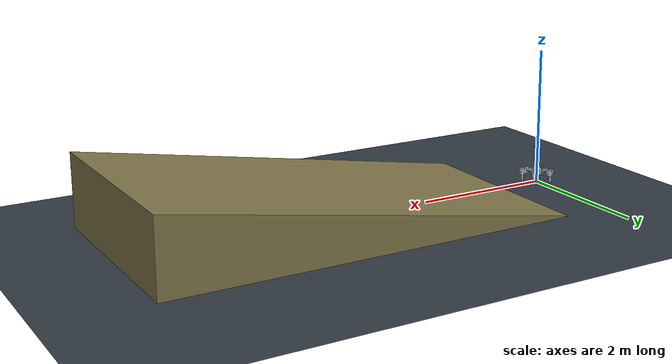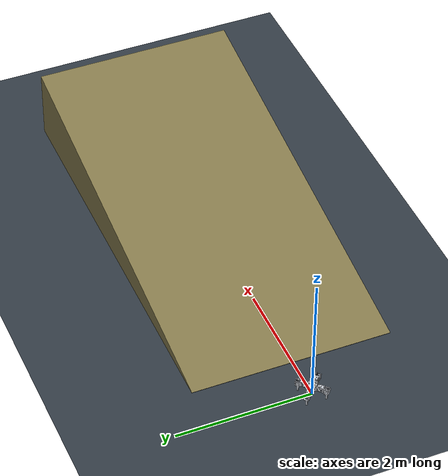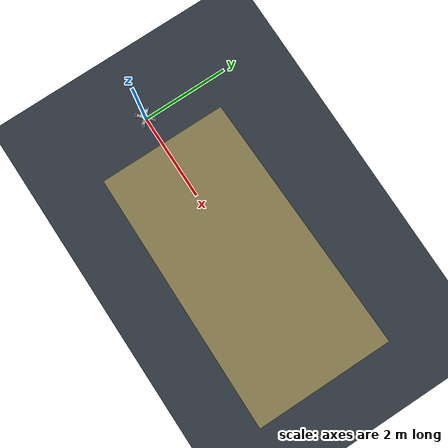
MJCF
<?xml version='1.0' encoding='utf-8'?>
<mujoco model="A17 - flat to 10 degree ramp - 1.26 Nm">
  <compiler angle="radian" meshdir="robot_meshes_a17" inertiafromgeom="false" autolimits="true" />
  <option timestep=".002" integrator="implicitfast" cone="elliptic" iterations="50" />
  <visual>
    <global offwidth="1280" offheight="900" />
    <headlight ambient=".4 .4 .4" diffuse=".7 .7 .7" />
  </visual>
  <statistic center="0 0 .15" extent=".9" />
  <asset>
    <texture name="grid" type="2d" builtin="checker" width="512" height="512" rgb1=".15 .18 .22" rgb2=".23 .27 .3" />
    <material name="floor_mat" texture="grid" texrepeat="15 15" texuniform="true" />
    <mesh name="platform_White" file="platform_White.obj" inertia="shell" maxhullvert="32" />
    <mesh name="platform_Green" file="platform_Green.obj" inertia="shell" maxhullvert="32" />
    <mesh name="platform_Yellow" file="platform_Yellow.obj" inertia="shell" maxhullvert="32" />
    <mesh name="platform_Black" file="platform_Black.obj" inertia="shell" maxhullvert="32" />
    <mesh name="platform_Gray" file="platform_Gray.obj" inertia="shell" maxhullvert="32" />
    <mesh name="FL_yaw_White" file="FL_yaw_White.obj" inertia="shell" maxhullvert="32" />
    <mesh name="FL_yaw_Yellow" file="FL_yaw_Yellow.obj" inertia="shell" maxhullvert="32" />
    <mesh name="FL_yaw_Black" file="FL_yaw_Black.obj" inertia="shell" maxhullvert="32" />
    <mesh name="FL_yaw_Gray" file="FL_yaw_Gray.obj" inertia="shell" maxhullvert="32" />
    <mesh name="FL_pitch_White" file="FL_pitch_White.obj" inertia="shell" maxhullvert="32" />
    <mesh name="FL_pitch_Yellow" file="FL_pitch_Yellow.obj" inertia="shell" maxhullvert="32" />
    <mesh name="FL_pitch_Black" file="FL_pitch_Black.obj" inertia="shell" maxhullvert="32" />
    <mesh name="RL_yaw_White" file="RL_yaw_White.obj" inertia="shell" maxhullvert="32" />
    <mesh name="RL_yaw_Yellow" file="RL_yaw_Yellow.obj" inertia="shell" maxhullvert="32" />
    <mesh name="RL_yaw_Black" file="RL_yaw_Black.obj" inertia="shell" maxhullvert="32" />
    <mesh name="RL_yaw_Gray" file="RL_yaw_Gray.obj" inertia="shell" maxhullvert="32" />
    <mesh name="RL_pitch_White" file="RL_pitch_White.obj" inertia="shell" maxhullvert="32" />
    <mesh name="RL_pitch_Yellow" file="RL_pitch_Yellow.obj" inertia="shell" maxhullvert="32" />
    <mesh name="RL_pitch_Black" file="RL_pitch_Black.obj" inertia="shell" maxhullvert="32" />
    <mesh name="FR_yaw_White" file="FR_yaw_White.obj" inertia="shell" maxhullvert="32" />
    <mesh name="FR_yaw_Yellow" file="FR_yaw_Yellow.obj" inertia="shell" maxhullvert="32" />
    <mesh name="FR_yaw_Black" file="FR_yaw_Black.obj" inertia="shell" maxhullvert="32" />
    <mesh name="FR_yaw_Gray" file="FR_yaw_Gray.obj" inertia="shell" maxhullvert="32" />
    <mesh name="FR_pitch_White" file="FR_pitch_White.obj" inertia="shell" maxhullvert="32" />
    <mesh name="FR_pitch_Yellow" file="FR_pitch_Yellow.obj" inertia="shell" maxhullvert="32" />
    <mesh name="FR_pitch_Black" file="FR_pitch_Black.obj" inertia="shell" maxhullvert="32" />
    <mesh name="RR_yaw_White" file="RR_yaw_White.obj" inertia="shell" maxhullvert="32" />
    <mesh name="RR_yaw_Yellow" file="RR_yaw_Yellow.obj" inertia="shell" maxhullvert="32" />
    <mesh name="RR_yaw_Black" file="RR_yaw_Black.obj" inertia="shell" maxhullvert="32" />
    <mesh name="RR_yaw_Gray" file="RR_yaw_Gray.obj" inertia="shell" maxhullvert="32" />
    <mesh name="RR_pitch_White" file="RR_pitch_White.obj" inertia="shell" maxhullvert="32" />
    <mesh name="RR_pitch_Yellow" file="RR_pitch_Yellow.obj" inertia="shell" maxhullvert="32" />
    <mesh name="RR_pitch_Black" file="RR_pitch_Black.obj" inertia="shell" maxhullvert="32" />
    <mesh name="ramp_wedge" vertex="0.65 -1.5 -0.1 0.65 -1.5 0 0.65 1.5 -0.1 0.65 1.5 0 6.65 -1.5 -0.1 6.65 -1.5 1.0579618842507899 6.65 1.5 -0.1 6.65 1.5 1.0579618842507899" />
  </asset>
  <worldbody>
    <light pos="0 -1 2" dir="0 0 -1" />
    <geom name="floor" type="plane" size="20 20 .1" material="floor_mat" contype="1" conaffinity="2" friction=".8 .002 .0001" />
    <body name="platform" pos="0 0 .114">
      <freejoint name="floating_base" />
      <site name="imu" pos="0 0 .09" size=".003" group="4" />
      <body name="FL_yaw" pos="0.0764411255 0.0764411255 0.0545">
        <joint name="FL_yaw" type="hinge" axis="0 0 1" range="-1.57079633 1.57079633" damping=".012" armature=".000005" />
        <body name="FL_pitch" pos="0.0774281925 0.0639931637 -0.0095">
          <joint name="FL_pitch" type="hinge" axis="0.707106781 -0.707106781 0" range="0 1.57079633" damping=".012" armature=".000005" />
          <inertial mass="0.131206572" pos="-0.00595589217 0.00595588932 -0.051345835" fullinertia="0.000362158563 0.000362158555 0.000197800444 2.48118124e-05 -1.56438993e-05 1.5643884e-05" />
          <geom name="visual_FL_pitch_White" type="mesh" mesh="FL_pitch_White" rgba="0.78 0.8 0.83 1" contype="0" conaffinity="0" group="1" mass="0" />
          <geom name="visual_FL_pitch_Yellow" type="mesh" mesh="FL_pitch_Yellow" rgba="0.88 0.57 0.1 1" contype="0" conaffinity="0" group="1" mass="0" />
          <geom name="visual_FL_pitch_Black" type="mesh" mesh="FL_pitch_Black" rgba="0.065 0.075 0.09 1" contype="0" conaffinity="0" group="1" mass="0" />
          <geom name="FL_shank_contact" type="capsule" contype="2" conaffinity="3" group="3" rgba=".1 .8 .6 .35" mass="0" friction=".8 .002 .0001" solref=".006 1" fromto="0 0 -0.047 -0.00671751442 0.00671751442 -0.138" size=".012" />
          <geom name="FL_foot_contact" type="cylinder" contype="2" conaffinity="3" group="3" rgba=".1 .8 .6 .35" mass="0" friction=".8 .002 .0001" solref=".006 1" pos="-0.00671751442 0.00671751442 -0.1535" size=".015 .0045" />
          <site name="FL_foot" pos="-0.00671751442 0.00671751442 -0.158" size=".003" group="4" />
        </body>
        <inertial mass="0.235695785" pos="0.0495866798 0.0484265804 -0.00880650436" fullinertia="0.000400733281 0.000407514882 0.000585452045 -0.000137889561 1.72683121e-05 1.71237115e-05" />
        <geom name="visual_FL_yaw_White" type="mesh" mesh="FL_yaw_White" rgba="0.78 0.8 0.83 1" contype="0" conaffinity="0" group="1" mass="0" />
        <geom name="visual_FL_yaw_Yellow" type="mesh" mesh="FL_yaw_Yellow" rgba="0.88 0.57 0.1 1" contype="0" conaffinity="0" group="1" mass="0" />
        <geom name="visual_FL_yaw_Black" type="mesh" mesh="FL_yaw_Black" rgba="0.065 0.075 0.09 1" contype="0" conaffinity="0" group="1" mass="0" />
        <geom name="visual_FL_yaw_Gray" type="mesh" mesh="FL_yaw_Gray" rgba="0.42 0.47 0.53 1" contype="0" conaffinity="0" group="1" mass="0" />
        <geom name="FL_upper_contact" type="capsule" contype="2" conaffinity="3" group="3" rgba=".1 .8 .6 .35" mass="0" friction=".8 .002 .0001" solref=".006 1" fromto="0 0 0 0.0774281925 0.0639931637 -0.0095" size=".025" />
      </body>
      <body name="RL_yaw" pos="-0.0764411255 0.0764411255 0.0545">
        <joint name="RL_yaw" type="hinge" axis="0 0 1" range="-1.57079633 1.57079633" damping=".012" armature=".000005" />
        <body name="RL_pitch" pos="-0.0639931637 0.0774281925 -0.0095">
          <joint name="RL_pitch" type="hinge" axis="0.707106781 0.707106781 0" range="0 1.57079633" damping=".012" armature=".000005" />
          <inertial mass="0.131206579" pos="-0.00595591429 -0.00595591767 -0.0513458357" fullinertia="0.000362158566 0.000362158573 0.00019780046 -2.48118174e-05 -1.5644018e-05 -1.56440361e-05" />
          <geom name="visual_RL_pitch_White" type="mesh" mesh="RL_pitch_White" rgba="0.78 0.8 0.83 1" contype="0" conaffinity="0" group="1" mass="0" />
          <geom name="visual_RL_pitch_Yellow" type="mesh" mesh="RL_pitch_Yellow" rgba="0.88 0.57 0.1 1" contype="0" conaffinity="0" group="1" mass="0" />
          <geom name="visual_RL_pitch_Black" type="mesh" mesh="RL_pitch_Black" rgba="0.065 0.075 0.09 1" contype="0" conaffinity="0" group="1" mass="0" />
          <geom name="RL_shank_contact" type="capsule" contype="2" conaffinity="3" group="3" rgba=".1 .8 .6 .35" mass="0" friction=".8 .002 .0001" solref=".006 1" fromto="0 0 -0.047 -0.00671751442 -0.00671751442 -0.138" size=".012" />
          <geom name="RL_foot_contact" type="cylinder" contype="2" conaffinity="3" group="3" rgba=".1 .8 .6 .35" mass="0" friction=".8 .002 .0001" solref=".006 1" pos="-0.00671751442 -0.00671751442 -0.1535" size=".015 .0045" />
          <site name="RL_foot" pos="-0.00671751442 -0.00671751442 -0.158" size=".003" group="4" />
        </body>
        <inertial mass="0.235695785" pos="-0.0484265804 0.0495866798 -0.00880650436" fullinertia="0.000407514882 0.000400733281 0.000585452045 0.000137889561 -1.71237115e-05 1.72683121e-05" />
        <geom name="visual_RL_yaw_White" type="mesh" mesh="RL_yaw_White" rgba="0.78 0.8 0.83 1" contype="0" conaffinity="0" group="1" mass="0" />
        <geom name="visual_RL_yaw_Yellow" type="mesh" mesh="RL_yaw_Yellow" rgba="0.88 0.57 0.1 1" contype="0" conaffinity="0" group="1" mass="0" />
        <geom name="visual_RL_yaw_Black" type="mesh" mesh="RL_yaw_Black" rgba="0.065 0.075 0.09 1" contype="0" conaffinity="0" group="1" mass="0" />
        <geom name="visual_RL_yaw_Gray" type="mesh" mesh="RL_yaw_Gray" rgba="0.42 0.47 0.53 1" contype="0" conaffinity="0" group="1" mass="0" />
        <geom name="RL_upper_contact" type="capsule" contype="2" conaffinity="3" group="3" rgba=".1 .8 .6 .35" mass="0" friction=".8 .002 .0001" solref=".006 1" fromto="0 0 0 -0.0639931637 0.0774281925 -0.0095" size=".025" />
      </body>
      <body name="FR_yaw" pos="0.0764411255 -0.0764411255 0.0545">
        <joint name="FR_yaw" type="hinge" axis="0 0 1" range="-1.57079633 1.57079633" damping=".012" armature=".000005" />
        <body name="FR_pitch" pos="0.0639931637 -0.0774281925 -0.0095">
          <joint name="FR_pitch" type="hinge" axis="-0.707106781 -0.707106781 0" range="0 1.57079633" damping=".012" armature=".000005" />
          <inertial mass="0.131206576" pos="0.00595587448 0.00595589257 -0.0513458412" fullinertia="0.00036215862 0.000362158625 0.000197800445 -2.4811811e-05 1.56438047e-05 1.56439019e-05" />
          <geom name="visual_FR_pitch_White" type="mesh" mesh="FR_pitch_White" rgba="0.78 0.8 0.83 1" contype="0" conaffinity="0" group="1" mass="0" />
          <geom name="visual_FR_pitch_Yellow" type="mesh" mesh="FR_pitch_Yellow" rgba="0.88 0.57 0.1 1" contype="0" conaffinity="0" group="1" mass="0" />
          <geom name="visual_FR_pitch_Black" type="mesh" mesh="FR_pitch_Black" rgba="0.065 0.075 0.09 1" contype="0" conaffinity="0" group="1" mass="0" />
          <geom name="FR_shank_contact" type="capsule" contype="2" conaffinity="3" group="3" rgba=".1 .8 .6 .35" mass="0" friction=".8 .002 .0001" solref=".006 1" fromto="0 0 -0.047 0.00671751442 0.00671751442 -0.138" size=".012" />
          <geom name="FR_foot_contact" type="cylinder" contype="2" conaffinity="3" group="3" rgba=".1 .8 .6 .35" mass="0" friction=".8 .002 .0001" solref=".006 1" pos="0.00671751442 0.00671751442 -0.1535" size=".015 .0045" />
          <site name="FR_foot" pos="0.00671751442 0.00671751442 -0.158" size=".003" group="4" />
        </body>
        <inertial mass="0.235695785" pos="0.0484265804 -0.0495866798 -0.00880650436" fullinertia="0.000407514882 0.000400733281 0.000585452045 0.000137889561 1.71237115e-05 -1.72683121e-05" />
        <geom name="visual_FR_yaw_White" type="mesh" mesh="FR_yaw_White" rgba="0.78 0.8 0.83 1" contype="0" conaffinity="0" group="1" mass="0" />
        <geom name="visual_FR_yaw_Yellow" type="mesh" mesh="FR_yaw_Yellow" rgba="0.88 0.57 0.1 1" contype="0" conaffinity="0" group="1" mass="0" />
        <geom name="visual_FR_yaw_Black" type="mesh" mesh="FR_yaw_Black" rgba="0.065 0.075 0.09 1" contype="0" conaffinity="0" group="1" mass="0" />
        <geom name="visual_FR_yaw_Gray" type="mesh" mesh="FR_yaw_Gray" rgba="0.42 0.47 0.53 1" contype="0" conaffinity="0" group="1" mass="0" />
        <geom name="FR_upper_contact" type="capsule" contype="2" conaffinity="3" group="3" rgba=".1 .8 .6 .35" mass="0" friction=".8 .002 .0001" solref=".006 1" fromto="0 0 0 0.0639931637 -0.0774281925 -0.0095" size=".025" />
      </body>
      <body name="RR_yaw" pos="-0.0764411255 -0.0764411255 0.0545">
        <joint name="RR_yaw" type="hinge" axis="0 0 1" range="-1.57079633 1.57079633" damping=".012" armature=".000005" />
        <body name="RR_pitch" pos="-0.0774281925 -0.0639931637 -0.0095">
          <joint name="RR_pitch" type="hinge" axis="-0.707106781 0.707106781 0" range="0 1.57079633" damping=".012" armature=".000005" />
          <inertial mass="0.131206577" pos="0.00595593255 -0.00595591444 -0.0513458414" fullinertia="0.000362158635 0.000362158631 0.000197800461 2.4811819e-05 1.56441167e-05 -1.56440194e-05" />
          <geom name="visual_RR_pitch_White" type="mesh" mesh="RR_pitch_White" rgba="0.78 0.8 0.83 1" contype="0" conaffinity="0" group="1" mass="0" />
          <geom name="visual_RR_pitch_Yellow" type="mesh" mesh="RR_pitch_Yellow" rgba="0.88 0.57 0.1 1" contype="0" conaffinity="0" group="1" mass="0" />
          <geom name="visual_RR_pitch_Black" type="mesh" mesh="RR_pitch_Black" rgba="0.065 0.075 0.09 1" contype="0" conaffinity="0" group="1" mass="0" />
          <geom name="RR_shank_contact" type="capsule" contype="2" conaffinity="3" group="3" rgba=".1 .8 .6 .35" mass="0" friction=".8 .002 .0001" solref=".006 1" fromto="0 0 -0.047 0.00671751442 -0.00671751442 -0.138" size=".012" />
          <geom name="RR_foot_contact" type="cylinder" contype="2" conaffinity="3" group="3" rgba=".1 .8 .6 .35" mass="0" friction=".8 .002 .0001" solref=".006 1" pos="0.00671751442 -0.00671751442 -0.1535" size=".015 .0045" />
          <site name="RR_foot" pos="0.00671751442 -0.00671751442 -0.158" size=".003" group="4" />
        </body>
        <inertial mass="0.235695785" pos="-0.0495866798 -0.0484265804 -0.00880650436" fullinertia="0.000400733281 0.000407514882 0.000585452045 -0.000137889561 -1.72683121e-05 -1.71237115e-05" />
        <geom name="visual_RR_yaw_White" type="mesh" mesh="RR_yaw_White" rgba="0.78 0.8 0.83 1" contype="0" conaffinity="0" group="1" mass="0" />
        <geom name="visual_RR_yaw_Yellow" type="mesh" mesh="RR_yaw_Yellow" rgba="0.88 0.57 0.1 1" contype="0" conaffinity="0" group="1" mass="0" />
        <geom name="visual_RR_yaw_Black" type="mesh" mesh="RR_yaw_Black" rgba="0.065 0.075 0.09 1" contype="0" conaffinity="0" group="1" mass="0" />
        <geom name="visual_RR_yaw_Gray" type="mesh" mesh="RR_yaw_Gray" rgba="0.42 0.47 0.53 1" contype="0" conaffinity="0" group="1" mass="0" />
        <geom name="RR_upper_contact" type="capsule" contype="2" conaffinity="3" group="3" rgba=".1 .8 .6 .35" mass="0" friction=".8 .002 .0001" solref=".006 1" fromto="0 0 0 -0.0774281925 -0.0639931637 -0.0095" size=".025" />
      </body>
      <inertial mass="1.09882888" pos="-2.04439108e-05 -0.00138846579 0.043609218" fullinertia="0.00459269714 0.00463127091 0.00796359074 5.25406911e-07 7.52587091e-08 3.26556667e-05" />
      <geom name="visual_platform_White" type="mesh" mesh="platform_White" rgba="0.78 0.8 0.83 1" contype="0" conaffinity="0" group="1" mass="0" />
      <geom name="visual_platform_Green" type="mesh" mesh="platform_Green" rgba="0.12 0.55 0.32 1" contype="0" conaffinity="0" group="1" mass="0" />
      <geom name="visual_platform_Yellow" type="mesh" mesh="platform_Yellow" rgba="0.88 0.57 0.1 1" contype="0" conaffinity="0" group="1" mass="0" />
      <geom name="visual_platform_Black" type="mesh" mesh="platform_Black" rgba="0.065 0.075 0.09 1" contype="0" conaffinity="0" group="1" mass="0" />
      <geom name="visual_platform_Gray" type="mesh" mesh="platform_Gray" rgba="0.42 0.47 0.53 1" contype="0" conaffinity="0" group="1" mass="0" />
      <geom name="centre_contact" type="box" contype="2" conaffinity="3" group="3" rgba=".1 .8 .6 .35" mass="0" friction=".8 .002 .0001" solref=".006 1" pos="0 0 .042" size=".061 .061 .045" />
      <geom name="battery_contact" type="box" contype="2" conaffinity="3" group="3" rgba=".1 .8 .6 .35" mass="0" friction=".8 .002 .0001" solref=".006 1" pos="0 0 -.0115" size=".038 .022 .0075" />
      <geom name="FL_yaw_fixed" type="cylinder" contype="2" conaffinity="3" group="3" rgba=".1 .8 .6 .35" mass="0" friction=".8 .002 .0001" solref=".006 1" pos="0.0764411255 0.0764411255 0.0445" size=".028 .033" />
      <geom name="RL_yaw_fixed" type="cylinder" contype="2" conaffinity="3" group="3" rgba=".1 .8 .6 .35" mass="0" friction=".8 .002 .0001" solref=".006 1" pos="-0.0764411255 0.0764411255 0.0445" size=".028 .033" />
      <geom name="FR_yaw_fixed" type="cylinder" contype="2" conaffinity="3" group="3" rgba=".1 .8 .6 .35" mass="0" friction=".8 .002 .0001" solref=".006 1" pos="0.0764411255 -0.0764411255 0.0445" size=".028 .033" />
      <geom name="RR_yaw_fixed" type="cylinder" contype="2" conaffinity="3" group="3" rgba=".1 .8 .6 .35" mass="0" friction=".8 .002 .0001" solref=".006 1" pos="-0.0764411255 -0.0764411255 0.0445" size=".028 .033" />
    </body>
    <geom name="ramp" type="mesh" mesh="ramp_wedge" mass="0" rgba=".52 .48 .30 1" contype="1" conaffinity="2" friction=".8 .002 .0001" solref=".006 1" />
  </worldbody>
  <actuator>
    <motor name="FL_yaw" joint="FL_yaw" gear="1" ctrlrange="-1.26 1.26" />
    <motor name="FL_pitch" joint="FL_pitch" gear="1" ctrlrange="-1.26 1.26" />
    <motor name="RL_yaw" joint="RL_yaw" gear="1" ctrlrange="-1.26 1.26" />
    <motor name="RL_pitch" joint="RL_pitch" gear="1" ctrlrange="-1.26 1.26" />
    <motor name="FR_yaw" joint="FR_yaw" gear="1" ctrlrange="-1.26 1.26" />
    <motor name="FR_pitch" joint="FR_pitch" gear="1" ctrlrange="-1.26 1.26" />
    <motor name="RR_yaw" joint="RR_yaw" gear="1" ctrlrange="-1.26 1.26" />
    <motor name="RR_pitch" joint="RR_pitch" gear="1" ctrlrange="-1.26 1.26" />
  </actuator>
  <sensor>
    <gyro site="imu" name="gyro" />
    <accelerometer site="imu" name="accel" />
  </sensor>
</mujoco>
